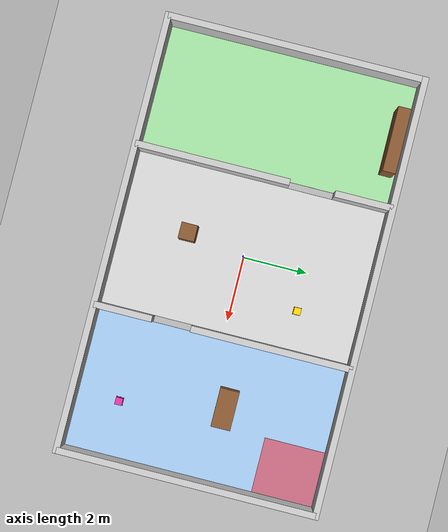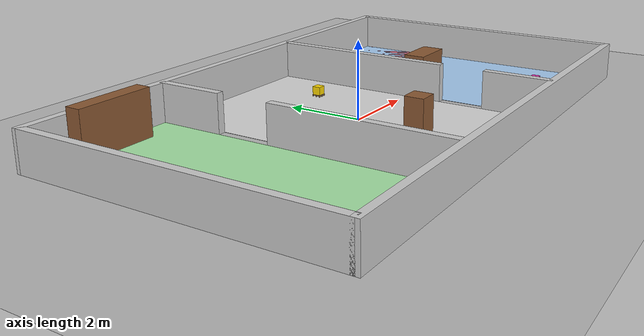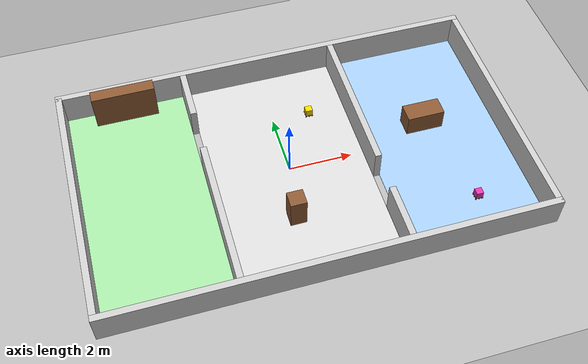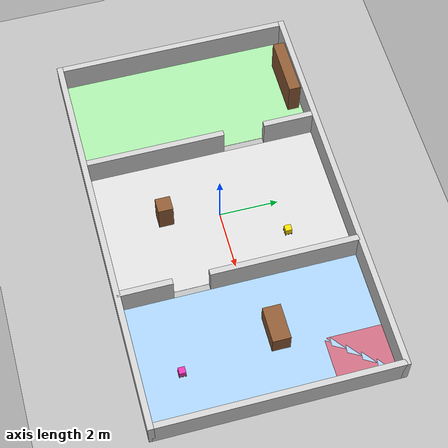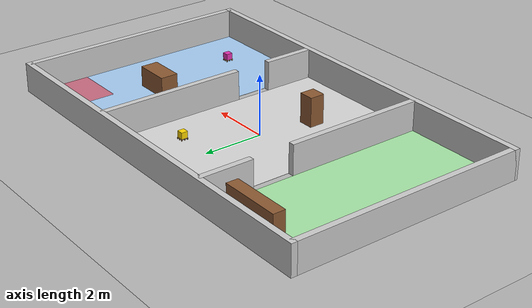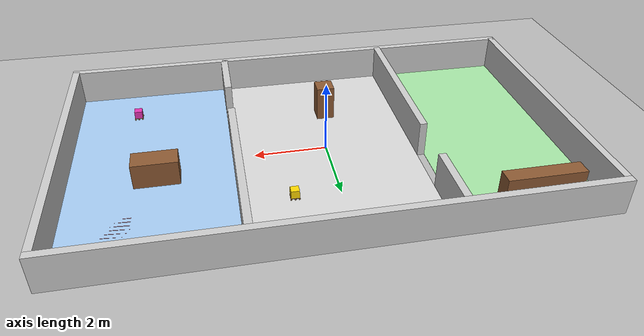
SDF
<?xml version="1.0" ?>
<!-- Generated by tools/generate_world.py from tools/world_layout.py. Do not edit by hand. -->
<sdf version="1.6">
  <world name="default">

    <light name="sun" type="directional">
      <cast_shadows>false</cast_shadows>
      <pose>0 0 10 0 0 0</pose>
      <diffuse>0.8 0.8 0.8 1</diffuse>
      <specular>0.2 0.2 0.2 1</specular>
      <attenuation>
        <range>1000</range>
        <constant>0.9</constant>
        <linear>0.01</linear>
        <quadratic>0.001</quadratic>
      </attenuation>
      <direction>-0.5 0.1 -0.9</direction>
    </light>

    <model name="ground_plane">
      <static>true</static>
      <link name="link">
        <collision name="collision">
          <geometry><plane><normal>0 0 1</normal><size>100 100</size></plane></geometry>
          <surface>
            <friction><ode><mu>100</mu><mu2>50</mu2></ode></friction>
          </surface>
        </collision>
        <visual name="visual">
          <cast_shadows>false</cast_shadows>
          <geometry><plane><normal>0 0 1</normal><size>100 100</size></plane></geometry>
          <material><ambient>0.72 0.72 0.72 1</ambient><diffuse>0.72 0.72 0.72 1</diffuse></material>
        </visual>
      </link>
    </model>

    <physics type="ode">
      <real_time_update_rate>1000.0</real_time_update_rate>
      <max_step_size>0.001</max_step_size>
      <real_time_factor>1</real_time_factor>
      <ode>
        <solver>
          <type>quick</type>
          <iters>150</iters>
          <precon_iters>0</precon_iters>
          <sor>1.400000</sor>
          <use_dynamic_moi_rescaling>1</use_dynamic_moi_rescaling>
        </solver>
        <constraints>
          <cfm>0.00001</cfm>
          <erp>0.2</erp>
          <contact_max_correcting_vel>2000.000000</contact_max_correcting_vel>
          <contact_surface_layer>0.01000</contact_surface_layer>
        </constraints>
      </ode>
    </physics>

    <scene>
      <shadows>false</shadows>
    </scene>

    <gui fullscreen="0">
      <camera name="user_camera">
        <pose>0.25 0 13 0 1.5708 0</pose>
        <view_controller>orbit</view_controller>
        <projection_type>perspective</projection_type>
      </camera>
    </gui>

    <plugin name="gazebo_ros_state" filename="libgazebo_ros_state.so">
      <ros>
        <namespace>/gazebo</namespace>
      </ros>
      <update_rate>10.0</update_rate>
    </plugin>

    <model name="building">
      <static>true</static>
      <link name="link">
        <collision name="wall_south_col">
          <pose>0.25 -4 0.5 0 0 0</pose>
          <geometry><box><size>13.7 0.2 1</size></box></geometry>
        </collision>
        <visual name="wall_south_vis">
          <pose>0.25 -4 0.5 0 0 0</pose>
          <geometry><box><size>13.7 0.2 1</size></box></geometry>
          <material><ambient>0.8 0.8 0.8 1</ambient><diffuse>0.8 0.8 0.8 1</diffuse></material>
        </visual>
        <collision name="wall_north_col">
          <pose>0.25 4 0.5 0 0 0</pose>
          <geometry><box><size>13.7 0.2 1</size></box></geometry>
        </collision>
        <visual name="wall_north_vis">
          <pose>0.25 4 0.5 0 0 0</pose>
          <geometry><box><size>13.7 0.2 1</size></box></geometry>
          <material><ambient>0.8 0.8 0.8 1</ambient><diffuse>0.8 0.8 0.8 1</diffuse></material>
        </visual>
        <collision name="wall_west_col">
          <pose>-6.5 0 0.5 0 0 0</pose>
          <geometry><box><size>0.2 8 1</size></box></geometry>
        </collision>
        <visual name="wall_west_vis">
          <pose>-6.5 0 0.5 0 0 0</pose>
          <geometry><box><size>0.2 8 1</size></box></geometry>
          <material><ambient>0.8 0.8 0.8 1</ambient><diffuse>0.8 0.8 0.8 1</diffuse></material>
        </visual>
        <collision name="wall_east_col">
          <pose>7 0 0.5 0 0 0</pose>
          <geometry><box><size>0.2 8 1</size></box></geometry>
        </collision>
        <visual name="wall_east_vis">
          <pose>7 0 0.5 0 0 0</pose>
          <geometry><box><size>0.2 8 1</size></box></geometry>
          <material><ambient>0.8 0.8 0.8 1</ambient><diffuse>0.8 0.8 0.8 1</diffuse></material>
        </visual>
        <collision name="wall_a_south_col">
          <pose>-2.5 -1.6 0.5 0 0 0</pose>
          <geometry><box><size>0.2 4.8 1</size></box></geometry>
        </collision>
        <visual name="wall_a_south_vis">
          <pose>-2.5 -1.6 0.5 0 0 0</pose>
          <geometry><box><size>0.2 4.8 1</size></box></geometry>
          <material><ambient>0.8 0.8 0.8 1</ambient><diffuse>0.8 0.8 0.8 1</diffuse></material>
        </visual>
        <collision name="wall_a_north_col">
          <pose>-2.5 3.1 0.5 0 0 0</pose>
          <geometry><box><size>0.2 1.8 1</size></box></geometry>
        </collision>
        <visual name="wall_a_north_vis">
          <pose>-2.5 3.1 0.5 0 0 0</pose>
          <geometry><box><size>0.2 1.8 1</size></box></geometry>
          <material><ambient>0.8 0.8 0.8 1</ambient><diffuse>0.8 0.8 0.8 1</diffuse></material>
        </visual>
        <collision name="wall_b_south_col">
          <pose>2.5 -3.1 0.5 0 0 0</pose>
          <geometry><box><size>0.2 1.8 1</size></box></geometry>
        </collision>
        <visual name="wall_b_south_vis">
          <pose>2.5 -3.1 0.5 0 0 0</pose>
          <geometry><box><size>0.2 1.8 1</size></box></geometry>
          <material><ambient>0.8 0.8 0.8 1</ambient><diffuse>0.8 0.8 0.8 1</diffuse></material>
        </visual>
        <collision name="wall_b_north_col">
          <pose>2.5 1.5 0.5 0 0 0</pose>
          <geometry><box><size>0.2 5 1</size></box></geometry>
        </collision>
        <visual name="wall_b_north_vis">
          <pose>2.5 1.5 0.5 0 0 0</pose>
          <geometry><box><size>0.2 5 1</size></box></geometry>
          <material><ambient>0.8 0.8 0.8 1</ambient><diffuse>0.8 0.8 0.8 1</diffuse></material>
        </visual>
      </link>
    </model>

    <model name="obstacles">
      <static>true</static>
      <link name="link">
        <collision name="pillar_hall_col">
          <pose>-0.3 -1.8 0.5 0 0 0</pose>
          <geometry><box><size>0.5 0.5 1</size></box></geometry>
        </collision>
        <visual name="pillar_hall_vis">
          <pose>-0.3 -1.8 0.5 0 0 0</pose>
          <geometry><box><size>0.5 0.5 1</size></box></geometry>
          <material><ambient>0.55 0.35 0.2 1</ambient><diffuse>0.55 0.35 0.2 1</diffuse></material>
        </visual>
        <collision name="table_b_col">
          <pose>4.6 0.6 0.35 0 0 0</pose>
          <geometry><box><size>1.2 0.6 0.7</size></box></geometry>
        </collision>
        <visual name="table_b_vis">
          <pose>4.6 0.6 0.35 0 0 0</pose>
          <geometry><box><size>1.2 0.6 0.7</size></box></geometry>
          <material><ambient>0.55 0.35 0.2 1</ambient><diffuse>0.55 0.35 0.2 1</diffuse></material>
        </visual>
        <collision name="shelf_a_col">
          <pose>-4.5 3.6 0.6 0 0 0</pose>
          <geometry><box><size>2 0.4 1.2</size></box></geometry>
        </collision>
        <visual name="shelf_a_vis">
          <pose>-4.5 3.6 0.6 0 0 0</pose>
          <geometry><box><size>2 0.4 1.2</size></box></geometry>
          <material><ambient>0.55 0.35 0.2 1</ambient><diffuse>0.55 0.35 0.2 1</diffuse></material>
        </visual>
      </link>
    </model>

    <!-- Colored floor (only a picture, no collision) -->
    <model name="floor_marks">
      <static>true</static>
      <link name="link">
        <visual name="room_a_floor">
          <pose>-4.5 0 0.003 0 0 0</pose>
          <geometry><box><size>3.8 7.8 0.006</size></box></geometry>
          <material><ambient>0.65 0.9 0.65 1</ambient><diffuse>0.65 0.9 0.65 1</diffuse></material>
        </visual>
        <visual name="hall_floor">
          <pose>0 0 0.003 0 0 0</pose>
          <geometry><box><size>4.8 7.8 0.006</size></box></geometry>
          <material><ambient>0.85 0.85 0.85 1</ambient><diffuse>0.85 0.85 0.85 1</diffuse></material>
        </visual>
        <visual name="room_b_floor">
          <pose>4.75 0 0.003 0 0 0</pose>
          <geometry><box><size>4.3 7.8 0.006</size></box></geometry>
          <material><ambient>0.65 0.8 0.95 1</ambient><diffuse>0.65 0.8 0.95 1</diffuse></material>
        </visual>
        <visual name="restricted_floor">
          <pose>6.05 2.95 0.003 0 0 0</pose>
          <geometry><box><size>1.7 1.9 0.006</size></box></geometry>
          <material><ambient>1 0 0 0.45</ambient><diffuse>1 0 0 0.45</diffuse></material>
        </visual>
      </link>
    </model>

    <model name="cube_0">
      <pose>1.2 2 0.1680 0 0 0</pose>
      <link name="link">
        <inertial>
          <pose>0 0 -0.03 0 0 0</pose>
          <mass>0.05</mass>
          <inertia>
            <ixx>0.0005597</ixx><iyy>0.0005597</iyy><izz>0.0004800</izz>
            <ixy>0</ixy><ixz>0</ixz><iyz>0</iyz>
          </inertia>
        </inertial>
        <collision name="cube_collision">
          <geometry><box><size>0.22 0.22 0.22</size></box></geometry>
          <surface><friction><ode><mu>1.0</mu><mu2>1.0</mu2></ode></friction></surface>
        </collision>
        <visual name="cube_visual">
          <geometry><box><size>0.22 0.22 0.22</size></box></geometry>
          <material><ambient>1 0.85 0 1</ambient><diffuse>1 0.85 0 1</diffuse></material>
        </visual>
        <collision name="block_00_collision">
          <pose>-0.1025 -0.1025 -0.1445 0 0 0</pose>
          <geometry><box><size>0.035 0.035 0.045</size></box></geometry>
          <surface><friction><ode><mu>1.0</mu><mu2>1.0</mu2></ode></friction></surface>
        </collision>
        <collision name="block_01_collision">
          <pose>-0.1025 0 -0.1445 0 0 0</pose>
          <geometry><box><size>0.035 0.035 0.045</size></box></geometry>
          <surface><friction><ode><mu>1.0</mu><mu2>1.0</mu2></ode></friction></surface>
        </collision>
        <collision name="block_02_collision">
          <pose>-0.1025 0.1025 -0.1445 0 0 0</pose>
          <geometry><box><size>0.035 0.035 0.045</size></box></geometry>
          <surface><friction><ode><mu>1.0</mu><mu2>1.0</mu2></ode></friction></surface>
        </collision>
        <collision name="block_10_collision">
          <pose>0 -0.1025 -0.1445 0 0 0</pose>
          <geometry><box><size>0.035 0.035 0.045</size></box></geometry>
          <surface><friction><ode><mu>1.0</mu><mu2>1.0</mu2></ode></friction></surface>
        </collision>
        <collision name="block_11_collision">
          <pose>0 0 -0.1445 0 0 0</pose>
          <geometry><box><size>0.035 0.035 0.045</size></box></geometry>
          <surface><friction><ode><mu>1.0</mu><mu2>1.0</mu2></ode></friction></surface>
        </collision>
        <collision name="block_12_collision">
          <pose>0 0.1025 -0.1445 0 0 0</pose>
          <geometry><box><size>0.035 0.035 0.045</size></box></geometry>
          <surface><friction><ode><mu>1.0</mu><mu2>1.0</mu2></ode></friction></surface>
        </collision>
        <collision name="block_20_collision">
          <pose>0.1025 -0.1025 -0.1445 0 0 0</pose>
          <geometry><box><size>0.035 0.035 0.045</size></box></geometry>
          <surface><friction><ode><mu>1.0</mu><mu2>1.0</mu2></ode></friction></surface>
        </collision>
        <collision name="block_21_collision">
          <pose>0.1025 0 -0.1445 0 0 0</pose>
          <geometry><box><size>0.035 0.035 0.045</size></box></geometry>
          <surface><friction><ode><mu>1.0</mu><mu2>1.0</mu2></ode></friction></surface>
        </collision>
        <collision name="block_22_collision">
          <pose>0.1025 0.1025 -0.1445 0 0 0</pose>
          <geometry><box><size>0.035 0.035 0.045</size></box></geometry>
          <surface><friction><ode><mu>1.0</mu><mu2>1.0</mu2></ode></friction></surface>
        </collision>
        <collision name="deck_collision">
          <pose>0 0 -0.1160 0 0 0</pose>
          <geometry><box><size>0.24 0.24 0.012</size></box></geometry>
          <surface><friction><ode><mu>1.0</mu><mu2>1.0</mu2></ode></friction></surface>
        </collision>
        <visual name="block_00_visual">
          <pose>-0.1025 -0.1025 -0.1445 0 0 0</pose>
          <geometry><box><size>0.035 0.035 0.045</size></box></geometry>
          <material><ambient>0.72 0.55 0.33 1</ambient><diffuse>0.72 0.55 0.33 1</diffuse></material>
        </visual>
        <visual name="block_01_visual">
          <pose>-0.1025 0 -0.1445 0 0 0</pose>
          <geometry><box><size>0.035 0.035 0.045</size></box></geometry>
          <material><ambient>0.72 0.55 0.33 1</ambient><diffuse>0.72 0.55 0.33 1</diffuse></material>
        </visual>
        <visual name="block_02_visual">
          <pose>-0.1025 0.1025 -0.1445 0 0 0</pose>
          <geometry><box><size>0.035 0.035 0.045</size></box></geometry>
          <material><ambient>0.72 0.55 0.33 1</ambient><diffuse>0.72 0.55 0.33 1</diffuse></material>
        </visual>
        <visual name="block_10_visual">
          <pose>0 -0.1025 -0.1445 0 0 0</pose>
          <geometry><box><size>0.035 0.035 0.045</size></box></geometry>
          <material><ambient>0.72 0.55 0.33 1</ambient><diffuse>0.72 0.55 0.33 1</diffuse></material>
        </visual>
        <visual name="block_11_visual">
          <pose>0 0 -0.1445 0 0 0</pose>
          <geometry><box><size>0.035 0.035 0.045</size></box></geometry>
          <material><ambient>0.72 0.55 0.33 1</ambient><diffuse>0.72 0.55 0.33 1</diffuse></material>
        </visual>
        <visual name="block_12_visual">
          <pose>0 0.1025 -0.1445 0 0 0</pose>
          <geometry><box><size>0.035 0.035 0.045</size></box></geometry>
          <material><ambient>0.72 0.55 0.33 1</ambient><diffuse>0.72 0.55 0.33 1</diffuse></material>
        </visual>
        <visual name="block_20_visual">
          <pose>0.1025 -0.1025 -0.1445 0 0 0</pose>
          <geometry><box><size>0.035 0.035 0.045</size></box></geometry>
          <material><ambient>0.72 0.55 0.33 1</ambient><diffuse>0.72 0.55 0.33 1</diffuse></material>
        </visual>
        <visual name="block_21_visual">
          <pose>0.1025 0 -0.1445 0 0 0</pose>
          <geometry><box><size>0.035 0.035 0.045</size></box></geometry>
          <material><ambient>0.72 0.55 0.33 1</ambient><diffuse>0.72 0.55 0.33 1</diffuse></material>
        </visual>
        <visual name="block_22_visual">
          <pose>0.1025 0.1025 -0.1445 0 0 0</pose>
          <geometry><box><size>0.035 0.035 0.045</size></box></geometry>
          <material><ambient>0.72 0.55 0.33 1</ambient><diffuse>0.72 0.55 0.33 1</diffuse></material>
        </visual>
        <visual name="board_0_visual">
          <pose>-0.096 0 -0.1160 0 0 0</pose>
          <geometry><box><size>0.04 0.24 0.012</size></box></geometry>
          <material><ambient>0.72 0.55 0.33 1</ambient><diffuse>0.72 0.55 0.33 1</diffuse></material>
        </visual>
        <visual name="board_1_visual">
          <pose>-0.048 0 -0.1160 0 0 0</pose>
          <geometry><box><size>0.04 0.24 0.012</size></box></geometry>
          <material><ambient>0.72 0.55 0.33 1</ambient><diffuse>0.72 0.55 0.33 1</diffuse></material>
        </visual>
        <visual name="board_2_visual">
          <pose>0 0 -0.1160 0 0 0</pose>
          <geometry><box><size>0.04 0.24 0.012</size></box></geometry>
          <material><ambient>0.72 0.55 0.33 1</ambient><diffuse>0.72 0.55 0.33 1</diffuse></material>
        </visual>
        <visual name="board_3_visual">
          <pose>0.048 0 -0.1160 0 0 0</pose>
          <geometry><box><size>0.04 0.24 0.012</size></box></geometry>
          <material><ambient>0.72 0.55 0.33 1</ambient><diffuse>0.72 0.55 0.33 1</diffuse></material>
        </visual>
        <visual name="board_4_visual">
          <pose>0.096 0 -0.1160 0 0 0</pose>
          <geometry><box><size>0.04 0.24 0.012</size></box></geometry>
          <material><ambient>0.72 0.55 0.33 1</ambient><diffuse>0.72 0.55 0.33 1</diffuse></material>
        </visual>
      </link>
    </model>
    <model name="cube_1">
      <pose>5.2 -2.6 0.1680 0 0 0</pose>
      <link name="link">
        <inertial>
          <pose>0 0 -0.03 0 0 0</pose>
          <mass>0.05</mass>
          <inertia>
            <ixx>0.0005597</ixx><iyy>0.0005597</iyy><izz>0.0004800</izz>
            <ixy>0</ixy><ixz>0</ixz><iyz>0</iyz>
          </inertia>
        </inertial>
        <collision name="cube_collision">
          <geometry><box><size>0.22 0.22 0.22</size></box></geometry>
          <surface><friction><ode><mu>1.0</mu><mu2>1.0</mu2></ode></friction></surface>
        </collision>
        <visual name="cube_visual">
          <geometry><box><size>0.22 0.22 0.22</size></box></geometry>
          <material><ambient>0.9 0.2 0.7 1</ambient><diffuse>0.9 0.2 0.7 1</diffuse></material>
        </visual>
        <collision name="block_00_collision">
          <pose>-0.1025 -0.1025 -0.1445 0 0 0</pose>
          <geometry><box><size>0.035 0.035 0.045</size></box></geometry>
          <surface><friction><ode><mu>1.0</mu><mu2>1.0</mu2></ode></friction></surface>
        </collision>
        <collision name="block_01_collision">
          <pose>-0.1025 0 -0.1445 0 0 0</pose>
          <geometry><box><size>0.035 0.035 0.045</size></box></geometry>
          <surface><friction><ode><mu>1.0</mu><mu2>1.0</mu2></ode></friction></surface>
        </collision>
        <collision name="block_02_collision">
          <pose>-0.1025 0.1025 -0.1445 0 0 0</pose>
          <geometry><box><size>0.035 0.035 0.045</size></box></geometry>
          <surface><friction><ode><mu>1.0</mu><mu2>1.0</mu2></ode></friction></surface>
        </collision>
        <collision name="block_10_collision">
          <pose>0 -0.1025 -0.1445 0 0 0</pose>
          <geometry><box><size>0.035 0.035 0.045</size></box></geometry>
          <surface><friction><ode><mu>1.0</mu><mu2>1.0</mu2></ode></friction></surface>
        </collision>
        <collision name="block_11_collision">
          <pose>0 0 -0.1445 0 0 0</pose>
          <geometry><box><size>0.035 0.035 0.045</size></box></geometry>
          <surface><friction><ode><mu>1.0</mu><mu2>1.0</mu2></ode></friction></surface>
        </collision>
        <collision name="block_12_collision">
          <pose>0 0.1025 -0.1445 0 0 0</pose>
          <geometry><box><size>0.035 0.035 0.045</size></box></geometry>
          <surface><friction><ode><mu>1.0</mu><mu2>1.0</mu2></ode></friction></surface>
        </collision>
        <collision name="block_20_collision">
          <pose>0.1025 -0.1025 -0.1445 0 0 0</pose>
          <geometry><box><size>0.035 0.035 0.045</size></box></geometry>
          <surface><friction><ode><mu>1.0</mu><mu2>1.0</mu2></ode></friction></surface>
        </collision>
        <collision name="block_21_collision">
          <pose>0.1025 0 -0.1445 0 0 0</pose>
          <geometry><box><size>0.035 0.035 0.045</size></box></geometry>
          <surface><friction><ode><mu>1.0</mu><mu2>1.0</mu2></ode></friction></surface>
        </collision>
        <collision name="block_22_collision">
          <pose>0.1025 0.1025 -0.1445 0 0 0</pose>
          <geometry><box><size>0.035 0.035 0.045</size></box></geometry>
          <surface><friction><ode><mu>1.0</mu><mu2>1.0</mu2></ode></friction></surface>
        </collision>
        <collision name="deck_collision">
          <pose>0 0 -0.1160 0 0 0</pose>
          <geometry><box><size>0.24 0.24 0.012</size></box></geometry>
          <surface><friction><ode><mu>1.0</mu><mu2>1.0</mu2></ode></friction></surface>
        </collision>
        <visual name="block_00_visual">
          <pose>-0.1025 -0.1025 -0.1445 0 0 0</pose>
          <geometry><box><size>0.035 0.035 0.045</size></box></geometry>
          <material><ambient>0.72 0.55 0.33 1</ambient><diffuse>0.72 0.55 0.33 1</diffuse></material>
        </visual>
        <visual name="block_01_visual">
          <pose>-0.1025 0 -0.1445 0 0 0</pose>
          <geometry><box><size>0.035 0.035 0.045</size></box></geometry>
          <material><ambient>0.72 0.55 0.33 1</ambient><diffuse>0.72 0.55 0.33 1</diffuse></material>
        </visual>
        <visual name="block_02_visual">
          <pose>-0.1025 0.1025 -0.1445 0 0 0</pose>
          <geometry><box><size>0.035 0.035 0.045</size></box></geometry>
          <material><ambient>0.72 0.55 0.33 1</ambient><diffuse>0.72 0.55 0.33 1</diffuse></material>
        </visual>
        <visual name="block_10_visual">
          <pose>0 -0.1025 -0.1445 0 0 0</pose>
          <geometry><box><size>0.035 0.035 0.045</size></box></geometry>
          <material><ambient>0.72 0.55 0.33 1</ambient><diffuse>0.72 0.55 0.33 1</diffuse></material>
        </visual>
        <visual name="block_11_visual">
          <pose>0 0 -0.1445 0 0 0</pose>
          <geometry><box><size>0.035 0.035 0.045</size></box></geometry>
          <material><ambient>0.72 0.55 0.33 1</ambient><diffuse>0.72 0.55 0.33 1</diffuse></material>
        </visual>
        <visual name="block_12_visual">
          <pose>0 0.1025 -0.1445 0 0 0</pose>
          <geometry><box><size>0.035 0.035 0.045</size></box></geometry>
          <material><ambient>0.72 0.55 0.33 1</ambient><diffuse>0.72 0.55 0.33 1</diffuse></material>
        </visual>
        <visual name="block_20_visual">
          <pose>0.1025 -0.1025 -0.1445 0 0 0</pose>
          <geometry><box><size>0.035 0.035 0.045</size></box></geometry>
          <material><ambient>0.72 0.55 0.33 1</ambient><diffuse>0.72 0.55 0.33 1</diffuse></material>
        </visual>
        <visual name="block_21_visual">
          <pose>0.1025 0 -0.1445 0 0 0</pose>
          <geometry><box><size>0.035 0.035 0.045</size></box></geometry>
          <material><ambient>0.72 0.55 0.33 1</ambient><diffuse>0.72 0.55 0.33 1</diffuse></material>
        </visual>
        <visual name="block_22_visual">
          <pose>0.1025 0.1025 -0.1445 0 0 0</pose>
          <geometry><box><size>0.035 0.035 0.045</size></box></geometry>
          <material><ambient>0.72 0.55 0.33 1</ambient><diffuse>0.72 0.55 0.33 1</diffuse></material>
        </visual>
        <visual name="board_0_visual">
          <pose>-0.096 0 -0.1160 0 0 0</pose>
          <geometry><box><size>0.04 0.24 0.012</size></box></geometry>
          <material><ambient>0.72 0.55 0.33 1</ambient><diffuse>0.72 0.55 0.33 1</diffuse></material>
        </visual>
        <visual name="board_1_visual">
          <pose>-0.048 0 -0.1160 0 0 0</pose>
          <geometry><box><size>0.04 0.24 0.012</size></box></geometry>
          <material><ambient>0.72 0.55 0.33 1</ambient><diffuse>0.72 0.55 0.33 1</diffuse></material>
        </visual>
        <visual name="board_2_visual">
          <pose>0 0 -0.1160 0 0 0</pose>
          <geometry><box><size>0.04 0.24 0.012</size></box></geometry>
          <material><ambient>0.72 0.55 0.33 1</ambient><diffuse>0.72 0.55 0.33 1</diffuse></material>
        </visual>
        <visual name="board_3_visual">
          <pose>0.048 0 -0.1160 0 0 0</pose>
          <geometry><box><size>0.04 0.24 0.012</size></box></geometry>
          <material><ambient>0.72 0.55 0.33 1</ambient><diffuse>0.72 0.55 0.33 1</diffuse></material>
        </visual>
        <visual name="board_4_visual">
          <pose>0.096 0 -0.1160 0 0 0</pose>
          <geometry><box><size>0.04 0.24 0.012</size></box></geometry>
          <material><ambient>0.72 0.55 0.33 1</ambient><diffuse>0.72 0.55 0.33 1</diffuse></material>
        </visual>
      </link>
    </model>
  </world>
</sdf>
